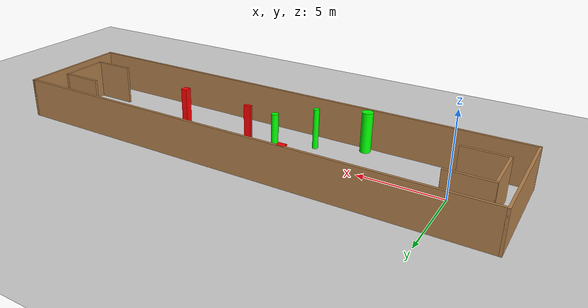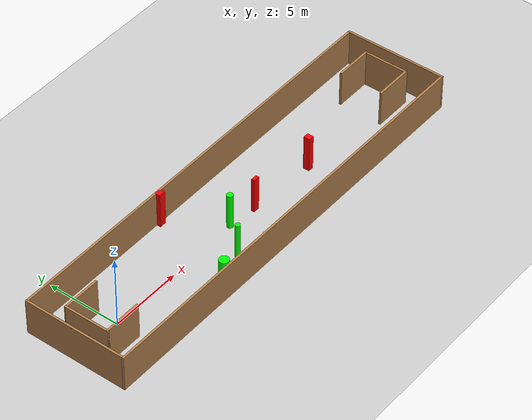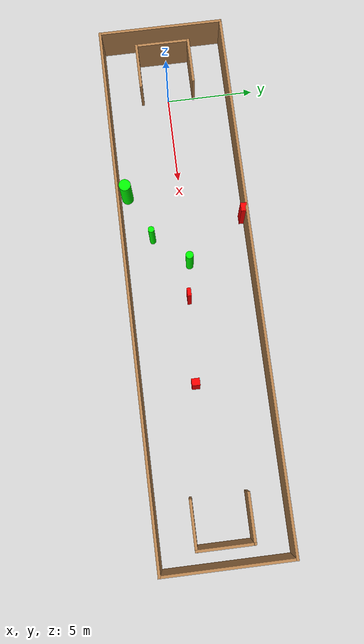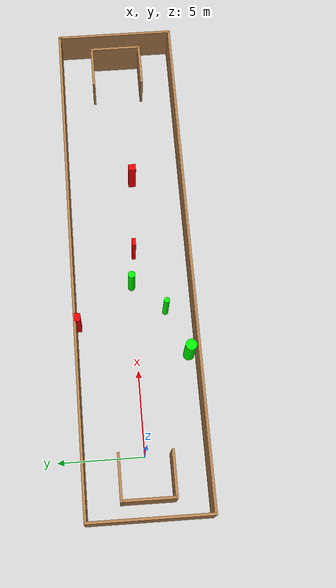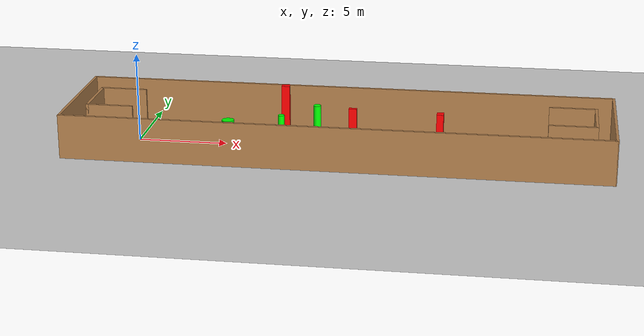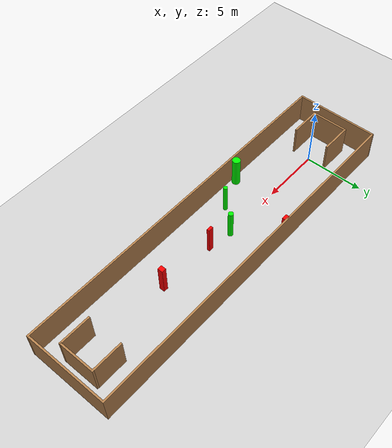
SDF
<sdf version="1.7">
 <world name="default">
  <light name="sun" type="directional">
   <pose>0 0 10 0 -0 0</pose>
   <diffuse>0.8 0.8 0.8 1</diffuse>
   <specular>0.2 0.2 0.2 1</specular>
   <attenuation>
    <range>1000</range>
    <constant>0.9</constant>
    <linear>0.01</linear>
    <quadratic>0.001</quadratic>
   </attenuation>
   <direction>-0.5 0.1 -0.9</direction>
   <spot><inner_angle>0</inner_angle><outer_angle>0</outer_angle><falloff>0</falloff></spot>
  </light>
  <model name="ground_plane">
   <static>1</static>
   <link name="link">
    <collision name="collision">
     <geometry><plane><normal>0 0 1</normal><size>100 100</size></plane></geometry>
     <surface>
      <contact><collide_bitmask>65535</collide_bitmask></contact>
      <friction><ode><mu>100</mu><mu2>50</mu2></ode></friction>
     </surface>
    </collision>
    <visual name="visual">
     <cast_shadows>0</cast_shadows>
     <geometry><plane><normal>0 0 1</normal><size>100 100</size></plane></geometry>
     <material>
      <script><uri>file://media/materials/scripts/gazebo.material</uri><name>Gazebo/Grey</name></script>
     </material>
    </visual>
   </link>
  </model>
  <gravity>0 0 -9.8</gravity>
  <magnetic_field>6e-06 2.3e-05 -4.2e-05</magnetic_field>
  <atmosphere type="adiabatic"/>
  <physics type="ode">
   <max_step_size>0.001</max_step_size>
   <real_time_factor>1</real_time_factor>
   <real_time_update_rate>1000</real_time_update_rate>
  </physics>
  <scene><ambient>0.4 0.4 0.4 1</ambient><background>0.7 0.7 0.7 1</background><shadows>1</shadows></scene>
  <spherical_coordinates>
   <surface_model>EARTH_WGS84</surface_model>
   <latitude_deg>0</latitude_deg>
   <longitude_deg>0</longitude_deg>
   <elevation>0</elevation>
   <heading_deg>0</heading_deg>
  </spherical_coordinates>
  <model name="my_base_walls">
   <link name="Wall_0">
    <collision name="Wall_0_Collision">
     <geometry><box><size>7.15 0.15 2.5</size></box></geometry>
     <pose>0 0 1.25 0 -0 0</pose>
    </collision>
    <visual name="Wall_0_Visual">
     <pose>0 0 1.25 0 -0 0</pose>
     <geometry><box><size>7.15 0.15 2.5</size></box></geometry>
     <material>
      <script><uri>file://media/materials/scripts/gazebo.material</uri><name>Gazebo/Wood</name></script>
      <ambient>1 1 1 1</ambient>
     </material>
     <meta><layer>0</layer></meta>
    </visual>
    <pose>-15 0 0 0 -0 1.5708</pose>
   </link>
   <link name="Wall_10">
    <collision name="Wall_10_Collision">
     <geometry><box><size>2.65 0.15 2.5</size></box></geometry>
     <pose>0 0 1.25 0 -0 0</pose>
    </collision>
    <visual name="Wall_10_Visual">
     <pose>0 0 1.25 0 -0 0</pose>
     <geometry><box><size>2.65 0.15 2.5</size></box></geometry>
     <material>
      <script><uri>file://media/materials/scripts/gazebo.material</uri><name>Gazebo/Wood</name></script>
      <ambient>1 1 1 1</ambient>
     </material>
     <meta><layer>0</layer></meta>
    </visual>
    <pose>-12.75 -1.5 0 0 -0 0</pose>
   </link>
   <link name="Wall_12">
    <collision name="Wall_12_Collision">
     <geometry><box><size>2.65 0.15 2.5</size></box></geometry>
     <pose>0 0 1.25 0 -0 0</pose>
    </collision>
    <visual name="Wall_12_Visual">
     <pose>0 0 1.25 0 -0 0</pose>
     <geometry><box><size>2.65 0.15 2.5</size></box></geometry>
     <material>
      <script><uri>file://media/materials/scripts/gazebo.material</uri><name>Gazebo/Wood</name></script>
      <ambient>1 1 1 1</ambient>
     </material>
     <meta><layer>0</layer></meta>
    </visual>
    <pose>-12.75 1.5 0 0 -0 0</pose>
   </link>
   <link name="Wall_14">
    <collision name="Wall_14_Collision">
     <geometry><box><size>3.15 0.15 2.5</size></box></geometry>
     <pose>0 0 1.25 0 -0 0</pose>
    </collision>
    <visual name="Wall_14_Visual">
     <pose>0 0 1.25 0 -0 0</pose>
     <geometry><box><size>3.15 0.15 2.5</size></box></geometry>
     <material>
      <script><uri>file://media/materials/scripts/gazebo.material</uri><name>Gazebo/Wood</name></script>
      <ambient>1 1 1 1</ambient>
     </material>
     <meta><layer>0</layer></meta>
    </visual>
    <pose>14 0 0 0 -0 -1.5708</pose>
   </link>
   <link name="Wall_15">
    <collision name="Wall_15_Collision">
     <geometry><box><size>2.65 0.15 2.5</size></box></geometry>
     <pose>0 0 1.25 0 -0 0</pose>
    </collision>
    <visual name="Wall_15_Visual">
     <pose>0 0 1.25 0 -0 0</pose>
     <geometry><box><size>2.65 0.15 2.5</size></box></geometry>
     <material>
      <script><uri>file://media/materials/scripts/gazebo.material</uri><name>Gazebo/Wood</name></script>
      <ambient>1 1 1 1</ambient>
     </material>
     <meta><layer>0</layer></meta>
    </visual>
    <pose>12.75 -1.5 0 0 -0 3.14159</pose>
   </link>
   <link name="Wall_17">
    <collision name="Wall_17_Collision">
     <geometry><box><size>2.65 0.15 2.5</size></box></geometry>
     <pose>0 0 1.25 0 -0 0</pose>
    </collision>
    <visual name="Wall_17_Visual">
     <pose>0 0 1.25 0 -0 0</pose>
     <geometry><box><size>2.65 0.15 2.5</size></box></geometry>
     <material>
      <script><uri>file://media/materials/scripts/gazebo.material</uri><name>Gazebo/Wood</name></script>
      <ambient>1 1 1 1</ambient>
     </material>
     <meta><layer>0</layer></meta>
    </visual>
    <pose>12.75 1.5 0 0 -0 3.14159</pose>
   </link>
   <link name="Wall_2">
    <collision name="Wall_2_Collision">
     <geometry><box><size>30.15 0.15 2.5</size></box></geometry>
     <pose>0 0 1.25 0 -0 0</pose>
    </collision>
    <visual name="Wall_2_Visual">
     <pose>0 0 1.25 0 -0 0</pose>
     <geometry><box><size>30.15 0.15 2.5</size></box></geometry>
     <material>
      <script><uri>file://media/materials/scripts/gazebo.material</uri><name>Gazebo/Wood</name></script>
      <ambient>1 1 1 1</ambient>
     </material>
     <meta><layer>0</layer></meta>
    </visual>
    <pose>-0 -3.5 0 0 -0 0</pose>
   </link>
   <link name="Wall_4">
    <collision name="Wall_4_Collision">
     <geometry><box><size>30.15 0.15 2.5</size></box></geometry>
     <pose>0 0 1.25 0 -0 0</pose>
    </collision>
    <visual name="Wall_4_Visual">
     <pose>0 0 1.25 0 -0 0</pose>
     <geometry><box><size>30.15 0.15 2.5</size></box></geometry>
     <material>
      <script><uri>file://media/materials/scripts/gazebo.material</uri><name>Gazebo/Wood</name></script>
      <ambient>1 1 1 1</ambient>
     </material>
     <meta><layer>0</layer></meta>
    </visual>
    <pose>-0 3.5 0 0 -0 0</pose>
   </link>
   <link name="Wall_6">
    <collision name="Wall_6_Collision">
     <geometry><box><size>7.15 0.15 2.5</size></box></geometry>
     <pose>0 0 1.25 0 -0 0</pose>
    </collision>
    <visual name="Wall_6_Visual">
     <pose>0 0 1.25 0 -0 0</pose>
     <geometry><box><size>7.15 0.15 2.5</size></box></geometry>
     <material>
      <script><uri>file://media/materials/scripts/gazebo.material</uri><name>Gazebo/Wood</name></script>
      <ambient>1 1 1 1</ambient>
     </material>
     <meta><layer>0</layer></meta>
    </visual>
    <pose>15 0 0 0 -0 -1.5708</pose>
   </link>
   <link name="Wall_9">
    <collision name="Wall_9_Collision">
     <geometry><box><size>3.15 0.15 2.5</size></box></geometry>
     <pose>0 0 1.25 0 -0 0</pose>
    </collision>
    <visual name="Wall_9_Visual">
     <pose>0 0 1.25 0 -0 0</pose>
     <geometry><box><size>3.15 0.15 2.5</size></box></geometry>
     <material>
      <script><uri>file://media/materials/scripts/gazebo.material</uri><name>Gazebo/Wood</name></script>
      <ambient>1 1 1 1</ambient>
     </material>
     <meta><layer>0</layer></meta>
    </visual>
    <pose>-14 0 0 0 -0 -1.5708</pose>
   </link>
   <static>1</static>
   <pose>11.5 0 0 0 -0 0</pose>
  </model>
  <model name="cylinder1">
   <static>1</static>
   <link name="link">
    <inertial>
     <mass>1</mass>
     <inertia><ixx>0.5</ixx><ixy>0</ixy><ixz>0</ixz><iyy>0.5</iyy><iyz>0</iyz><izz>1</izz></inertia>
    </inertial>
    <collision name="collision">
     <geometry><cylinder><radius>0.17238677040931213</radius><length>2.5</length></cylinder></geometry>
    </collision>
    <visual name="visual">
     <geometry><cylinder><radius>0.17238677040931213</radius><length>2.5</length></cylinder></geometry>
     <material>
      <ambient>0 1 0 1</ambient>
      <diffuse>0 1 0 1</diffuse>
      <specular>0.1 0.1 0.1 1</specular>
      <emissive>0 0 0 0</emissive>
     </material>
    </visual>
   </link>
   <pose>8.512468629080788 -1.880182123564759 1.25 0 0 0</pose>
  </model>
  <model name="cylinder2">
   <static>1</static>
   <link name="link">
    <inertial>
     <mass>1</mass>
     <inertia><ixx>0.5</ixx><ixy>0</ixy><ixz>0</ixz><iyy>0.5</iyy><iyz>0</iyz><izz>1</izz></inertia>
    </inertial>
    <collision name="collision">
     <geometry><cylinder><radius>0.21202290003064383</radius><length>2.5</length></cylinder></geometry>
    </collision>
    <visual name="visual">
     <geometry><cylinder><radius>0.21202290003064383</radius><length>2.5</length></cylinder></geometry>
     <material>
      <ambient>0 1 0 1</ambient>
      <diffuse>0 1 0 1</diffuse>
      <specular>0.1 0.1 0.1 1</specular>
      <emissive>0 0 0 0</emissive>
     </material>
    </visual>
   </link>
   <pose>10.198829830287869 0.034906021697545864 1.25 0 0 0</pose>
  </model>
  <model name="cylinder3">
   <static>1</static>
   <link name="link">
    <inertial>
     <mass>1</mass>
     <inertia><ixx>0.5</ixx><ixy>0</ixy><ixz>0</ixz><iyy>0.5</iyy><iyz>0</iyz><izz>1</izz></inertia>
    </inertial>
    <collision name="collision">
     <geometry><cylinder><radius>0.3324088572843378</radius><length>2.5</length></cylinder></geometry>
    </collision>
    <visual name="visual">
     <geometry><cylinder><radius>0.3324088572843378</radius><length>2.5</length></cylinder></geometry>
     <material>
      <ambient>0 1 0 1</ambient>
      <diffuse>0 1 0 1</diffuse>
      <specular>0.1 0.1 0.1 1</specular>
      <emissive>0 0 0 0</emissive>
     </material>
    </visual>
   </link>
   <pose>5.799365007257041 -3.0483584135478137 1.25 0 0 0</pose>
  </model>
  <model name="box1">
   <static>1</static>
   <link name="link">
    <inertial>
     <mass>1</mass>
     <inertia><ixx>0.083</ixx><ixy>0</ixy><ixz>0</ixz><iyy>0.083</iyy><iyz>0</iyz><izz>0.083</izz></inertia>
    </inertial>
    <collision name="collision">
     <geometry><box><size>0.4398252071760018 0.2214241747814396 2.5</size></box></geometry>
    </collision>
    <visual name="visual">
     <geometry><box><size>0.4398252071760018 0.2214241747814396 2.5</size></box></geometry>
     <material>
      <ambient>1 0 0 1</ambient>
      <diffuse>1 0 0 1</diffuse>
      <specular>0.1 0.1 0.1 1</specular>
      <emissive>0 0 0 0</emissive>
     </material>
    </visual>
    <sensor name="my_contact" type="contact">
     <contact><collision>box_collision</collision><topic>__default_topic__</topic></contact>
    </sensor>
   </link>
   <pose>12.227875170562859 -0.23849676501303296 1.25 0 0 0</pose>
  </model>
  <model name="box2">
   <static>1</static>
   <link name="link">
    <inertial>
     <mass>1</mass>
     <inertia><ixx>0.083</ixx><ixy>0</ixy><ixz>0</ixz><iyy>0.083</iyy><iyz>0</iyz><izz>0.083</izz></inertia>
    </inertial>
    <collision name="collision">
     <geometry><box><size>0.46861718834976596 0.34507726490741414 2.5</size></box></geometry>
    </collision>
    <visual name="visual">
     <geometry><box><size>0.46861718834976596 0.34507726490741414 2.5</size></box></geometry>
     <material>
      <ambient>1 0 0 1</ambient>
      <diffuse>1 0 0 1</diffuse>
      <specular>0.1 0.1 0.1 1</specular>
      <emissive>0 0 0 0</emissive>
     </material>
    </visual>
    <sensor name="my_contact" type="contact">
     <contact><collision>box_collision</collision><topic>__default_topic__</topic></contact>
    </sensor>
   </link>
   <pose>7.851659754710196 3.337483159079788 1.25 0 0 0</pose>
  </model>
  <model name="box3">
   <static>1</static>
   <link name="link">
    <inertial>
     <mass>1</mass>
     <inertia><ixx>0.083</ixx><ixy>0</ixy><ixz>0</ixz><iyy>0.083</iyy><iyz>0</iyz><izz>0.083</izz></inertia>
    </inertial>
    <collision name="collision">
     <geometry><box><size>0.37748484323072273 0.4421512060684425 2.5</size></box></geometry>
    </collision>
    <visual name="visual">
     <geometry><box><size>0.37748484323072273 0.4421512060684425 2.5</size></box></geometry>
     <material>
      <ambient>1 0 0 1</ambient>
      <diffuse>1 0 0 1</diffuse>
      <specular>0.1 0.1 0.1 1</specular>
      <emissive>0 0 0 0</emissive>
     </material>
    </visual>
    <sensor name="my_contact" type="contact">
     <contact><collision>box_collision</collision><topic>__default_topic__</topic></contact>
    </sensor>
   </link>
   <pose>17.060750968726094 -0.48043904536002735 1.25 0 0 0</pose>
  </model>
 </world>
</sdf>
